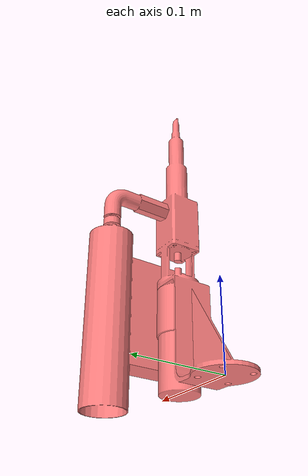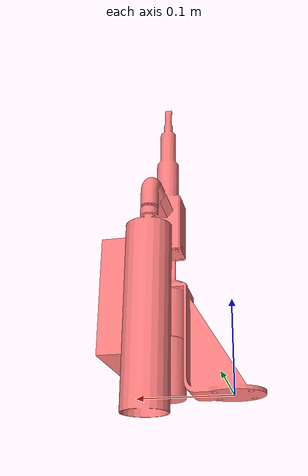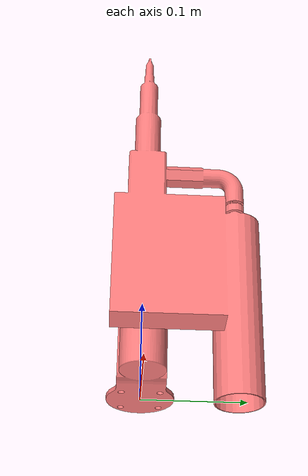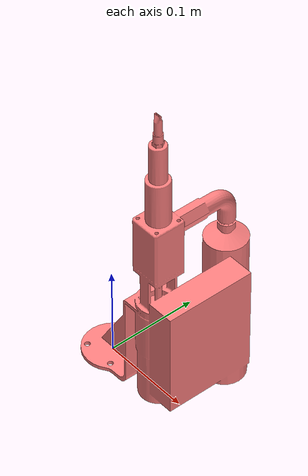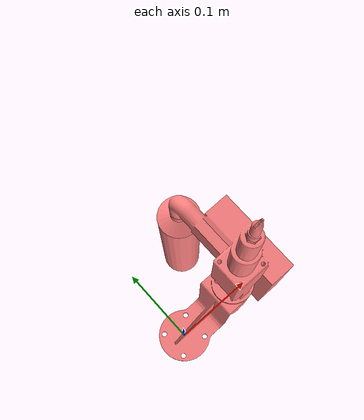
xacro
<?xml version="1.0"?>
<robot xmlns:xacro="http://wiki.ros.org/xacro">

  <xacro:include filename="$(find ur_description)/urdf/inc/ur_transmissions.xacro" />
  <xacro:include filename="$(find ur_description)/urdf/inc/ur_common.xacro" />

<!-- 我自己加上胶枪模型 -->
  <xacro:include filename="/home/lin/UR5e/src/fmauch_universal_robot/ur_description/urdf/glue_end.urdf"/>

  <xacro:macro name="ur_robot" params="
    prefix
    joint_limits_parameters_file
    kinematics_parameters_file
    physical_parameters_file
    visual_parameters_file
    transmission_hw_interface:=hardware_interface/PositionJointInterface
    safety_limits:=false
    safety_pos_margin:=0.15
    safety_k_position:=20"
  >
    <!-- Load configuration data from the provided .yaml files -->
    <xacro:read_model_data
      joint_limits_parameters_file="${joint_limits_parameters_file}"
      kinematics_parameters_file="${kinematics_parameters_file}"
      physical_parameters_file="${physical_parameters_file}"
      visual_parameters_file="${visual_parameters_file}"/>

    <!-- Add URDF transmission elements (for ros_control) -->
    <xacro:ur_arm_transmission prefix="${prefix}" hw_interface="${transmission_hw_interface}" />

    <!-- links: main serial chain -->
    <link name="${prefix}base_link"/>
    <link name="${prefix}base_link_inertia">
      <visual>
        <origin xyz="0 0 0" rpy="0 0 ${pi}"/>
        <geometry>
          <mesh filename="${base_visual_mesh}"/>
        </geometry>
        <material name="${base_visual_material_name}">
          <color rgba="${base_visual_material_color}"/>
        </material>
      </visual>
      <collision>
        <origin xyz="0 0 0" rpy="0 0 ${pi}"/>
        <geometry>
          <mesh filename="${base_collision_mesh}"/>
        </geometry>
      </collision>
      <xacro:cylinder_inertial radius="${base_inertia_radius}" length="${base_inertia_length}" mass="${base_mass}">
        <origin xyz="0 0 0" rpy="0 0 0" />
      </xacro:cylinder_inertial>
    </link>
    <link name="${prefix}shoulder_link">
      <visual>
        <origin xyz="0 0 0" rpy="0 0 ${pi}"/>
        <geometry>
          <mesh filename="${shoulder_visual_mesh}"/>
        </geometry>
        <material name="${shoulder_visual_material_name}">
          <color rgba="${shoulder_visual_material_color}"/>
        </material>
      </visual>
      <collision>
        <origin xyz="0 0 0" rpy="0 0 ${pi}"/>
        <geometry>
          <mesh filename="${shoulder_collision_mesh}"/>
        </geometry>
      </collision>
      <xacro:cylinder_inertial radius="${shoulder_inertia_radius}" length="${shoulder_inertia_length}" mass="${shoulder_mass}">
        <origin xyz="0 0 0" rpy="0 0 0" />
      </xacro:cylinder_inertial>
    </link>
    <link name="${prefix}upper_arm_link">
      <visual>
        <origin xyz="0 0 ${shoulder_offset}" rpy="${pi/2} 0 ${-pi/2}"/>
        <geometry>
          <mesh filename="${upper_arm_visual_mesh}"/>
        </geometry>
        <material name="${upper_arm_visual_material_name}">
          <color rgba="${upper_arm_visual_material_color}"/>
        </material>
      </visual>
      <collision>
        <origin xyz="0 0 ${shoulder_offset}" rpy="${pi/2} 0 ${-pi/2}"/>
        <geometry>
          <mesh filename="${upper_arm_collision_mesh}"/>
        </geometry>
      </collision>
      <xacro:cylinder_inertial radius="${upperarm_inertia_radius}" length="${upperarm_inertia_length}" mass="${upper_arm_mass}">
        <origin xyz="${-0.5 * upperarm_inertia_length} 0.0 ${upper_arm_inertia_offset}" rpy="0 ${pi/2} 0" />
      </xacro:cylinder_inertial>
    </link>
    <link name="${prefix}forearm_link">
      <visual>
        <origin xyz="0 0 ${elbow_offset}" rpy="${pi/2} 0 ${-pi/2}"/>
        <geometry>
          <mesh filename="${forearm_visual_mesh}"/>
        </geometry>
        <material name="${forearm_visual_material_name}">
          <color rgba="${forearm_visual_material_color}"/>
        </material>
      </visual>
      <collision>
        <origin xyz="0 0 ${elbow_offset}" rpy="${pi/2} 0 ${-pi/2}"/>
        <geometry>
          <mesh filename="${forearm_collision_mesh}"/>
        </geometry>
      </collision>
      <xacro:cylinder_inertial radius="${forearm_inertia_radius}" length="${forearm_inertia_length}"  mass="${forearm_mass}">
        <origin xyz="${-0.5 * forearm_inertia_length} 0.0 ${elbow_offset}" rpy="0 ${pi/2} 0" />
      </xacro:cylinder_inertial>
    </link>
    <link name="${prefix}wrist_1_link">
      <visual>
        <!-- TODO: Move this to a parameter -->
        <origin xyz="0 0 ${wrist_1_visual_offset}" rpy="${pi/2} 0 0"/>
        <geometry>
          <mesh filename="${wrist_1_visual_mesh}"/>
        </geometry>
        <material name="${wrist_1_visual_material_name}">
          <color rgba="${wrist_1_visual_material_color}"/>
        </material>
      </visual>
      <collision>
        <origin xyz="0 0 ${wrist_1_visual_offset}" rpy="${pi/2} 0 0"/>
        <geometry>
          <mesh filename="${wrist_1_collision_mesh}"/>
        </geometry>
      </collision>
      <xacro:cylinder_inertial radius="${wrist_1_inertia_radius}" length="${wrist_1_inertia_length}"  mass="${wrist_1_mass}">
        <origin xyz="0 0 0" rpy="0 0 0" />
      </xacro:cylinder_inertial>
    </link>
    <link name="${prefix}wrist_2_link">
      <visual>
        <origin xyz="0 0 ${wrist_2_visual_offset}" rpy="0 0 0"/>
        <geometry>
          <mesh filename="${wrist_2_visual_mesh}"/>
        </geometry>
        <material name="${wrist_2_visual_material_name}">
          <color rgba="${wrist_2_visual_material_color}"/>
        </material>
      </visual>
      <collision>
        <origin xyz="0 0 ${wrist_2_visual_offset}" rpy="0 0 0"/>
        <geometry>
          <mesh filename="${wrist_2_collision_mesh}"/>
        </geometry>
      </collision>
      <xacro:cylinder_inertial radius="${wrist_2_inertia_radius}" length="${wrist_2_inertia_length}"  mass="${wrist_2_mass}">
        <origin xyz="0 0 0" rpy="0 0 0" />
      </xacro:cylinder_inertial>
    </link>
    <link name="${prefix}wrist_3_link">
      <visual>
        <origin xyz="0 0 ${wrist_3_visual_offset}" rpy="${pi/2} 0 0"/>
        <geometry>
          <mesh filename="${wrist_3_visual_mesh}"/>
        </geometry>
        <material name="${wrist_3_visual_material_name}">
          <color rgba="${wrist_3_visual_material_color}"/>
        </material>
      </visual>
      <collision>
        <origin xyz="0 0 ${wrist_3_visual_offset}" rpy="${pi/2} 0 0"/>
        <geometry>
          <mesh filename="${wrist_3_collision_mesh}"/>
        </geometry>
      </collision>
      <xacro:cylinder_inertial radius="${wrist_3_inertia_radius}" length="${wrist_3_inertia_length}"  mass="${wrist_3_mass}">
        <origin xyz="0.0 0.0 ${-0.5 * wrist_3_inertia_length}" rpy="0 0 0" />
      </xacro:cylinder_inertial>
    </link>

    <!-- joints: main serial chain -->
    <joint name="${prefix}base_link-base_link_inertia" type="fixed">
      <parent link="${prefix}base_link" />
      <child link="${prefix}base_link_inertia" />
      <origin xyz="0 0 0" rpy="0 0 ${pi}" />
    </joint>
    <joint name="${prefix}shoulder_pan_joint" type="revolute">
      <parent link="${prefix}base_link_inertia" />
      <child link="${prefix}shoulder_link" />
      <origin xyz="${shoulder_x} ${shoulder_y} ${shoulder_z}" rpy="${shoulder_roll} ${shoulder_pitch} ${shoulder_yaw}" />
      <axis xyz="0 0 1" />
      <limit lower="${shoulder_pan_lower_limit}" upper="${shoulder_pan_upper_limit}"
        effort="${shoulder_pan_effort_limit}" velocity="${shoulder_pan_velocity_limit}"/>
      <xacro:if value="${safety_limits}">
         <safety_controller soft_lower_limit="${shoulder_pan_lower_limit + safety_pos_margin}" soft_upper_limit="${shoulder_pan_upper_limit - safety_pos_margin}" k_position="${safety_k_position}" k_velocity="0.0"/>
      </xacro:if>
      <dynamics damping="0" friction="0"/>
    </joint>
    <joint name="${prefix}shoulder_lift_joint" type="revolute">
      <parent link="${prefix}shoulder_link" />
      <child link="${prefix}upper_arm_link" />
      <origin xyz="${upper_arm_x} ${upper_arm_y} ${upper_arm_z}" rpy="${upper_arm_roll} ${upper_arm_pitch} ${upper_arm_yaw}" />
      <axis xyz="0 0 1" />
      <limit lower="${shoulder_lift_lower_limit}" upper="${shoulder_lift_upper_limit}"
        effort="${shoulder_lift_effort_limit}" velocity="${shoulder_lift_velocity_limit}"/>
      <xacro:if value="${safety_limits}">
         <safety_controller soft_lower_limit="${shoulder_lift_lower_limit + safety_pos_margin}" soft_upper_limit="${shoulder_lift_upper_limit - safety_pos_margin}" k_position="${safety_k_position}" k_velocity="0.0"/>
      </xacro:if>
      <dynamics damping="0" friction="0"/>
    </joint>
    <joint name="${prefix}elbow_joint" type="revolute">
      <parent link="${prefix}upper_arm_link" />
      <child link="${prefix}forearm_link" />
      <origin xyz="${forearm_x} ${forearm_y} ${forearm_z}" rpy="${forearm_roll} ${forearm_pitch} ${forearm_yaw}" />
      <axis xyz="0 0 1" />
      <limit lower="${elbow_joint_lower_limit}" upper="${elbow_joint_upper_limit}"
        effort="${elbow_joint_effort_limit}" velocity="${elbow_joint_velocity_limit}"/>
      <xacro:if value="${safety_limits}">
         <safety_controller soft_lower_limit="${elbow_joint_lower_limit + safety_pos_margin}" soft_upper_limit="${elbow_joint_upper_limit - safety_pos_margin}" k_position="${safety_k_position}" k_velocity="0.0"/>
      </xacro:if>
      <dynamics damping="0" friction="0"/>
    </joint>
    <joint name="${prefix}wrist_1_joint" type="revolute">
      <parent link="${prefix}forearm_link" />
      <child link="${prefix}wrist_1_link" />
      <origin xyz="${wrist_1_x} ${wrist_1_y} ${wrist_1_z}" rpy="${wrist_1_roll} ${wrist_1_pitch} ${wrist_1_yaw}" />
      <axis xyz="0 0 1" />
      <limit lower="${wrist_1_lower_limit}" upper="${wrist_1_upper_limit}"
        effort="${wrist_1_effort_limit}" velocity="${wrist_1_velocity_limit}"/>
      <xacro:if value="${safety_limits}">
         <safety_controller soft_lower_limit="${wrist_1_lower_limit + safety_pos_margin}" soft_upper_limit="${wrist_1_upper_limit - safety_pos_margin}" k_position="${safety_k_position}" k_velocity="0.0"/>
      </xacro:if>
      <dynamics damping="0" friction="0"/>
    </joint>
    <joint name="${prefix}wrist_2_joint" type="revolute">
      <parent link="${prefix}wrist_1_link" />
      <child link="${prefix}wrist_2_link" />
      <origin xyz="${wrist_2_x} ${wrist_2_y} ${wrist_2_z}" rpy="${wrist_2_roll} ${wrist_2_pitch} ${wrist_2_yaw}" />
      <axis xyz="0 0 1" />
      <limit lower="${wrist_2_lower_limit}" upper="${wrist_2_upper_limit}"
             effort="${wrist_2_effort_limit}" velocity="${wrist_2_velocity_limit}"/>
      <xacro:if value="${safety_limits}">
         <safety_controller soft_lower_limit="${wrist_2_lower_limit + safety_pos_margin}" soft_upper_limit="${wrist_2_upper_limit - safety_pos_margin}" k_position="${safety_k_position}" k_velocity="0.0"/>
      </xacro:if>
      <dynamics damping="0" friction="0"/>
    </joint>
    <joint name="${prefix}wrist_3_joint" type="revolute">
      <parent link="${prefix}wrist_2_link" />
      <child link="${prefix}wrist_3_link" />
      <origin xyz="${wrist_3_x} ${wrist_3_y} ${wrist_3_z}" rpy="${wrist_3_roll} ${wrist_3_pitch} ${wrist_3_yaw}" />
      <axis xyz="0 0 1" />
      <limit lower="${wrist_3_lower_limit}" upper="${wrist_3_upper_limit}"
             effort="${wrist_3_effort_limit}" velocity="${wrist_3_velocity_limit}"/>
      <xacro:if value="${safety_limits}">
         <safety_controller soft_lower_limit="${wrist_3_lower_limit + safety_pos_margin}" soft_upper_limit="${wrist_3_upper_limit - safety_pos_margin}" k_position="${safety_k_position}" k_velocity="0.0"/>
      </xacro:if>
      <dynamics damping="0" friction="0"/>
    </joint>

    <!-- ROS-Industrial 'base' frame: base_link to UR 'Base' Coordinates transform -->
    <link name="${prefix}base"/>
    <joint name="${prefix}base_link-base_fixed_joint" type="fixed">
      <origin xyz="0 0 0" rpy="0 0 ${pi}"/>
      <parent link="${prefix}base_link"/>
      <child link="${prefix}base"/>
    </joint>

    <!-- ROS-Industrial 'flange' frame: attachment point for EEF models -->
    <link name="${prefix}flange" />
    <joint name="${prefix}wrist_3-flange" type="fixed">
      <parent link="${prefix}wrist_3_link" />
      <child link="${prefix}flange" />
      <origin xyz="0 0 0" rpy="0 ${-pi/2.0} ${-pi/2.0}" />
    </joint>

    <!-- ROS-Industrial 'tool0' frame: all-zeros tool frame -->
    <link name="${prefix}tool0"/>
    <joint name="${prefix}flange-tool0" type="fixed">
      <!-- default toolframe: X+ left, Y+ up, Z+ front -->
      <origin xyz="0 0 0" rpy="${pi/2.0} 0 ${pi/2.0}"/>
      <parent link="${prefix}flange"/>
      <child link="${prefix}tool0"/>
    </joint>

    <xacro:macro name="${prefix}glue_end">
      <origin xyz="0 0 0" rpy="0 0 0"/>
    </xacro:macro>

    <joint name="${prefix}tool0_glue_end" type="fixed">
      <origin xyz="0 0 0" rpy="0 0 0"/>
      <parent link="${prefix}tool0"/>
      <child link="${prefix}glue_end"/>
    </joint>

    <link name="${prefix}eeffector"/>
    <joint name="${prefix}glue_end_eeffector" type="fixed">
      <origin xyz="0.07 0 0.348" rpy="0 0 0"/>
      <parent link="${prefix}glue_end"/>
      <child link="${prefix}eeffector"/>
    </joint>

   <link name="world" />

   <joint name="world_base_link" type="fixed">
     <parent link="world" />
     <child link="${prefix}base_link" />
     <origin xyz="0.0 0.0 0.512" rpy="0.0 0.0 0.0" />
   </joint>

  </xacro:macro>

</robot>

<?xml version="1.0"?>
<robot name="ur5" xmlns:xacro="http://www.ros.org/wiki/xacro">
  <!-- 引入Ur5和抓手 -->
  <xacro:include filename="$(find ur_description)/urdf/inc/ur5e_macro.xacro" />
  <xacro:include filename="$(find robotiq_description)/urdf/robotiq_85_gripper.urdf.xacro" />

  <!-- Robotiq Coupler   这个是那个机器人和Gripper的中间接口-->
  <!--  + Height added by the coupler: 8mm -->
  <!--  + Reference frame: at the middle (4mm) -->

<!-- 设置这个连接器的Gazebo属性，包括摩擦系数和材质 -->

  <!-- Equivalent to the OpenRAVE manipulator denso_robotiq_85_gripper -->

  <!-- Attach the robotiq 85 gripper，把gripper装到连接器上  ，他的源文件做了个转角   robotiq_coupler-->
  <xacro:robotiq_85_gripper prefix="" parent="tool0">
    <origin xyz="0 0 0" rpy="0 0 0"/>
  </xacro:robotiq_85_gripper>

  <!-- Gazebo grasping plugin义了一个抓取插件，用于模拟抓取过程。该插件指定了夹爪链接和掌链接，以及抓取过程中的一些参数，如附着和分离的步骤数量和最小接触点数。 -->
  <gazebo>
    <gripper name="gazebo_gripper">
      <grasp_check>
        <attach_steps>2</attach_steps>    <!-- default: 20 -->
        <detach_steps>2</detach_steps>    <!-- default: 40 -->
        <min_contact_count>3</min_contact_count>
      </grasp_check>
      <gripper_link>robotiq_85_left_finger_tip_link</gripper_link>
      <gripper_link>robotiq_85_right_finger_tip_link</gripper_link>
      <palm_link>robotiq_85_base_link</palm_link>
    </gripper>
  </gazebo>

</robot>

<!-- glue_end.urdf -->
<robot
  name="glue_end">
  <link
    name="glue_end">
    <inertial>
      <origin
        xyz="0.08093 0.013204 0.094518"
        rpy="0 0 0" />
      <mass
        value="0.82253" />
      <inertia
        ixx="0.0040009"
        ixy="-0.00014455"
        ixz="-0.00024328"
        iyy="0.0040773"
        iyz="-4.8943E-05"
        izz="0.0013781" />
    </inertial>
    <visual>
      <origin
        xyz="0 0 0"
        rpy="0 0 0" />
      <geometry>
        <mesh
          filename="package://ur_description/meshes/glue_end/visual/glue_end.dae" />
      </geometry>
      <material
        name="">
        <color
          rgba="1 0.5 0.5 1" />
      </material>
    </visual>
    <collision>
      <origin
        xyz="0 0 0"
        rpy="0 0 0" />
      <geometry>
        <mesh
          filename="package://ur_description/meshes/glue_end/collision/glue_end.stl" />
      </geometry>
    </collision>
  </link>
</robot>
